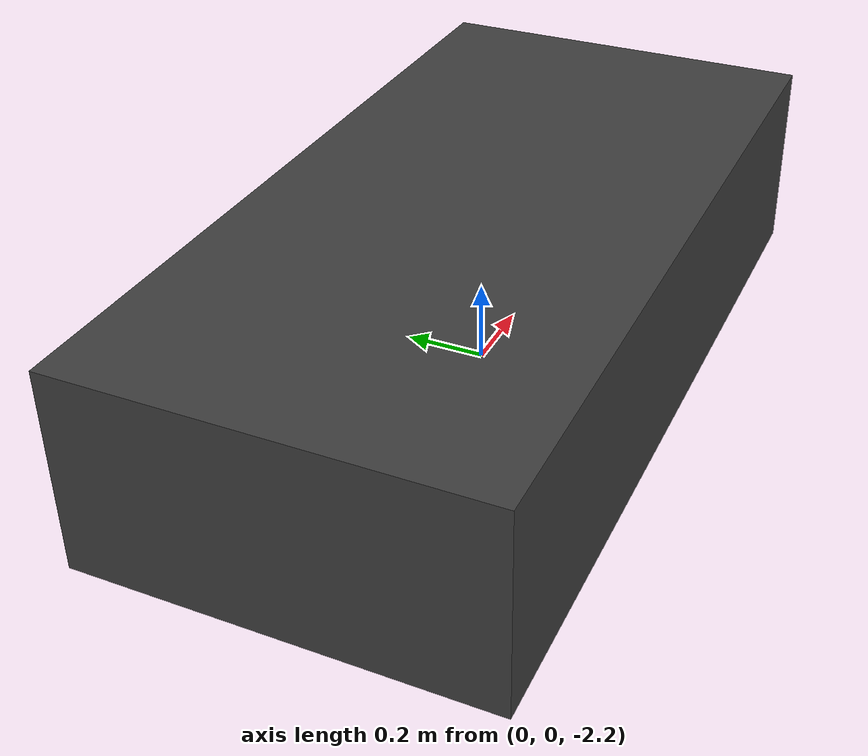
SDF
<?xml version='1.0' encoding='utf-8'?>
<sdf version="1.6">
  <world name="waves">
    <plugin filename="gz-sim-physics-system" name="gz::sim::systems::Physics">
    </plugin>
    <plugin filename="gz-sim-sensors-system" name="gz::sim::systems::Sensors">
      <render_engine>ogre2</render_engine>
      <background_color>0.8 0.8 0.8</background_color>
    </plugin>
    <plugin filename="gz-sim-scene-broadcaster-system" name="gz::sim::systems::SceneBroadcaster">
    </plugin>
    <plugin filename="gz-sim-user-commands-system" name="gz::sim::systems::UserCommands">
    </plugin>
    <plugin filename="gz-sim-imu-system" name="gz::sim::systems::Imu">
    </plugin>

    <scene>
      <ambient>1.0 1.0 1.0</ambient>
      <background>0.8 0.8 0.8</background>
      <sky />
    </scene>

    <light type="directional" name="sun">
      <cast_shadows>true</cast_shadows>
      <pose>0 0 10 0 0 0</pose>
      <diffuse>0.8 0.8 0.8 1</diffuse>
      <specular>0.6 0.6 0.6 1</specular>
      <direction>-0.5 0.1 -0.9</direction>
    </light>

    <include>
      <pose>0 0 0 0 0 0</pose>
      <uri>model://waves</uri>
    </include>

    <include>
      <uri>model://oceansync_sensor_rig</uri>
      <name>oceansync_sensor_rig</name>
      <pose>0 0 -2 0 0 0</pose>
    </include>
</world>
</sdf>

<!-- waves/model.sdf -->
<sdf version="1.6">
  <model name="waves">
    <static>true</static>
    <link name="link">
      <visual name= "wave_visual">
        <geometry>
          <mesh>
            <uri>meshes/mesh.dae</uri>
          </mesh>
        </geometry>
        <plugin
            filename="libWaveVisual.so"
            name="ignition::gazebo::systems::WaveVisual">
          <shader>
            <vertex>materials/programs/GerstnerWaves_vs_330.glsl</vertex>
            <fragment>materials/programs/GerstnerWaves_fs_330.glsl</fragment>
          </shader>
          <wavefield>
            <size>1000 1000</size>
            <cell_count>50 50</cell_count>
            <wave>
              <model>PMS</model>
              <period>5</period>
              <number>3</number>
              <scale>5.1</scale>
              <gain>0.3</gain>
              <direction>1 0</direction>
              <angle>0.4</angle>
              <tau>2.0</tau>
              <amplitude>0.0</amplitude>
              <steepness>0.0</steepness>
            </wave>
          </wavefield>
        </plugin>
        <visibility_flags>8</visibility_flags>
      </visual>
    </link>
  </model>
</sdf>

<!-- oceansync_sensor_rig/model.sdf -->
<sdf version="1.7">

  <model name="oceansync_sensor_rig">

    <!-- Temporary underwater test vehicle -->
    <pose>0 0 -2 0 0 0</pose>
    <static>true</static>

    <link name="base_link">

      <inertial>
        <mass>20.0</mass>
        <inertia>
          <ixx>1.0</ixx>
          <iyy>1.0</iyy>
          <izz>1.0</izz>
          <ixy>0</ixy>
          <ixz>0</ixz>
          <iyz>0</iyz>
        </inertia>
      </inertial>

      <collision name="collision">
        <geometry>
          <box>
            <size>2.0 1.0 0.5</size>
          </box>
        </geometry>
      </collision>

      <visual name="visual">
        <geometry>
          <box>
            <size>2.0 1.0 0.5</size>
          </box>
        </geometry>

        <material>
          <ambient>0.15 0.15 0.15 1</ambient>
          <diffuse>0.25 0.25 0.25 1</diffuse>
        </material>
      </visual>

      <!-- IMU -->
      <sensor name="imu" type="imu">
        <always_on>true</always_on>
        <update_rate>50</update_rate>
        <visualize>true</visualize>
      </sensor>

      <!-- Forward underwater camera -->
      <sensor name="underwater_camera" type="camera">
        <pose>0.9 0 -0.05 0 0 0</pose>

        <always_on>true</always_on>
        <update_rate>15</update_rate>

        <camera>
          <horizontal_fov>1.047</horizontal_fov>

          <image>
            <width>640</width>
            <height>480</height>
            <format>R8G8B8</format>
          </image>

          <clip>
            <near>0.1</near>
            <far>100</far>
          </clip>
        </camera>
      </sensor>

      <!-- Forward LiDAR -->
      <sensor name="lidar" type="gpu_lidar">
        <pose>0.8 0 -0.2 0 0 0</pose>

        <always_on>true</always_on>
        <update_rate>10</update_rate>

        <lidar>

          <scan>
            <horizontal>
              <samples>360</samples>
              <resolution>1</resolution>
              <min_angle>-3.14159</min_angle>
              <max_angle>3.14159</max_angle>
            </horizontal>

            <vertical>
              <samples>1</samples>
              <resolution>1</resolution>
              <min_angle>0</min_angle>
              <max_angle>0</max_angle>
            </vertical>
          </scan>

          <range>
            <min>0.2</min>
            <max>50.0</max>
            <resolution>0.01</resolution>
          </range>

        </lidar>
      </sensor>

    </link>

  </model>

</sdf>
